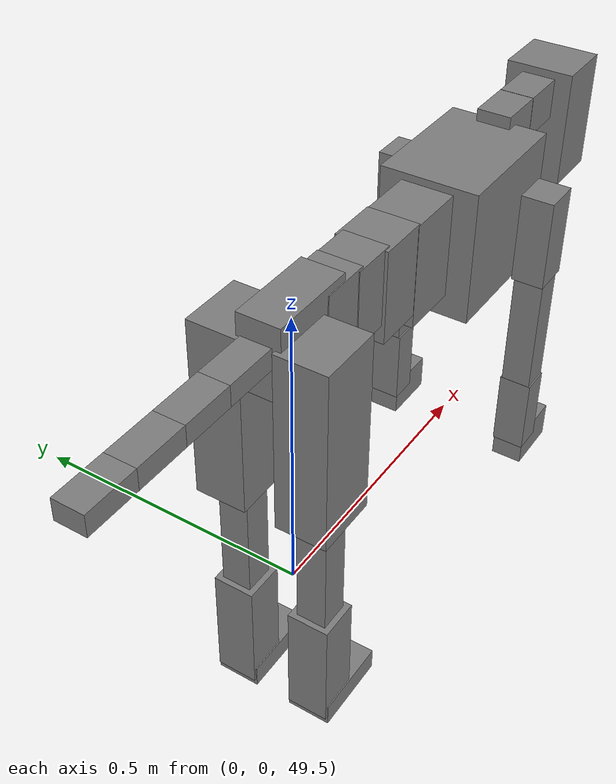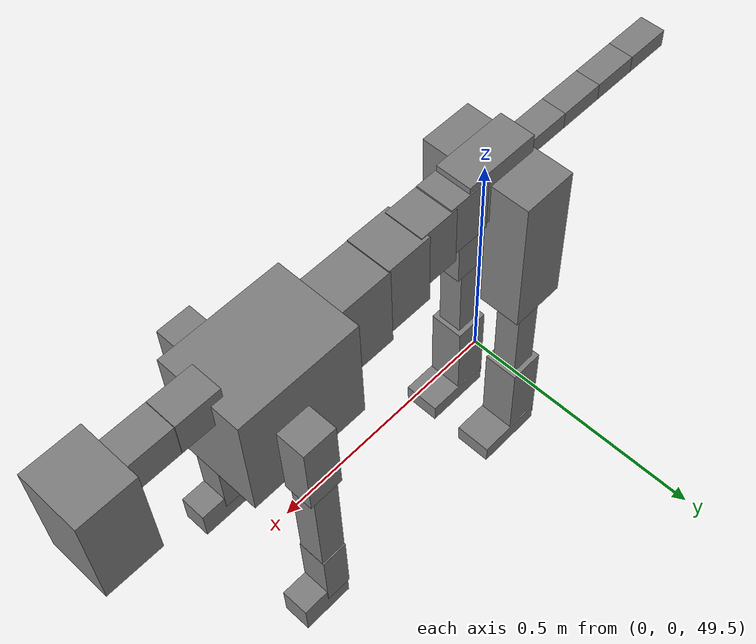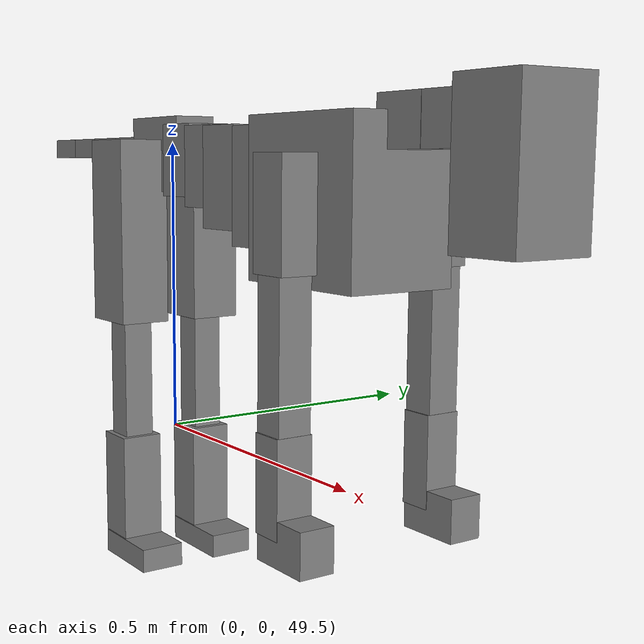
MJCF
<mujoco model="dog">

    <default>
        <joint armature="0.02" stiffness="1" damping="0.2" limited="true"/>
        <geom condim="3" friction="1 0.05 0.05" margin="0.01"/>
        <motor ctrllimited="true" ctrlrange="-1.0 1.0" forcelimited="true" gear="50"/>
    </default>

    <compiler inertiafromgeom="true" angle="radian"/>

    <option timestep="0.016" iterations="50" tolerance="1e-10" solver="Newton" jacobian="dense" cone="pyramidal"/>

    <size nconmax="20000" njmax="60000" nstack="5000000"/>
    <visual>
        <map force="0.1" zfar="30"/>
        <rgba haze="0.15 0.25 0.35 1"/>
        <quality shadowsize="2048"/>
        <global offwidth="800" offheight="800"/>
    </visual>

    <asset>
        <texture type="skybox" builtin="gradient" rgb1="0.3 0.5 0.7" rgb2="0 0 0" width="512" height="512"/>
        <texture name="texplane" type="2d" builtin="checker" rgb1=".2 .3 .4" rgb2=".1 0.15 0.2" width="512" height="512"
                 mark="cross" markrgb=".8 .8 .8"/>
        <texture name="texgeom" type="cube" builtin="flat" mark="cross" width="127" height="1278" rgb1="0.8 0.6 0.4"
                 rgb2="0.8 0.6 0.4" markrgb="1 1 1" random="0.01"/>

        <material name="matplane" reflectance="0.3" texture="texplane" texrepeat="1 1" texuniform="true"/>
        <material name="matgeom" texture="texgeom" texuniform="true" rgba="0.8 0.6 .4 1"/>
    </asset>

    <worldbody>
        <geom name="floor" pos="0 0 0" size="0 0 .25" type="plane" material="matplane" condim="3"/>

        <light directional="false" diffuse=".2 .2 .2" specular="0 0 0" pos="0 0 5" dir="0 0 -1" castshadow="false"/>
        <light mode="targetbodycom" target="torso" directional="false" diffuse=".8 .8 .8" specular="0.3 0.3 0.3"
               pos="0 0 4.0" dir="0 0 -1"/>

        <body name="root" pos="0 0 50">
            <freejoint name="root_1"/>
            <geom type="box" pos="0 0 -0.02" size="0.0774  0.0358  0.063" density="2030"/>

            <body name="spine1" pos="0.054 0 0">
                <joint name="spine1_y" axis="0 1 0" range="0 0.7" limited="true"/>
                <geom type="box" pos="0.02375 0 -0.03" size="0.04375  0.0375  0.05985" density="2030"/>

                <body name="spine2" pos="0.0612 0 0">
                    <joint name="spine2_y" axis="0 1 0" range="-0.15 0.15" limited="true"/>
                    <geom type="box" pos="0.03555  0  -0.04" size="0.04055  0.039  0.06615" density="2030"/>

                    <body name="spine3" pos="0.0730 0 0">
                        <joint name="spine3_y" axis="0 1 0" range="-0.15 0.15" limited="true"/>
                        <geom type="box" pos="0.03555  0  -0.057" size="0.04555  0.0445  0.081" density="2030"/>

                        <body name="spine4" pos="0.0780 0 0">
                            <joint name="spine4_y" axis="0 1 0" range="-0.15 0.15" limited="true"/>
                            <geom type="box" pos="0.05265  0  -0.07" size="0.05265  0.045  0.09135" density="2030"/>

                            <body name="torso" pos="0.1082 0 0">
                                <joint name="torso_y" axis="0 1 0" range="-0.15 0.15" limited="true"/>
                                <geom type="box" pos="0.11925  0  -0.085" size="0.11925  0.085  0.11745"
                                      density="2030"/>

                                <body name="neck1" pos="0.2160  0   0.0180">
                                    <joint name="neck1_y" axis="0 1 0" range="-1.2  -1" limited="true"/>
                                    <geom type="box" pos="0.0423  0  0" size="0.0423  0.03  0.036" density="2325"/>

                                    <body name="neck2" pos="0.0853  0  0">
                                        <joint name="neck2_y" axis="0 1 0" range="0.1  0" limited="true"/>
                                        <geom type="box" pos="0.0423  0  0" size="0.0423  0.03  0.036" density="2325"/>

                                        <body name="head" pos="0.0853  0  0">
                                            <joint name="head_y" axis="0 1 0" range="-0.3  -0.2" limited="true"/>
                                            <geom type="box" pos="0.0531  0  -0.055" size="0.0531  0.06  0.1044"
                                                  density="4030"/>

                                        </body>
                                    </body>
                                </body>

                                <body name="front_shoulder" pos="0.156  0   -0.0480">
                                    <joint name="front_shoulder_y" axis="0 1 0" range="-1 1.5" limited="true"/>
                                    <geom type="box" pos="0 0.13 -0.0521" size="0.0327  0.0279  0.0788" density="1158"/>
                                    <geom type="box" pos="0 -0.13 -0.0521" size="0.0327  0.0279  0.0788"
                                          density="1158"/>

                                    <body name="front_elbow" pos="0  0  -0.1042">
                                        <joint name="front_elbow_y" axis="0 1 0" range="-2 0" limited="true"/>
                                        <geom type="box" pos="0 0.13 -0.1258" size="0.0250  0.0255  0.1258"
                                              density="1081"/>
                                        <geom type="box" pos="0 -0.13 -0.1258" size="0.0250  0.0255  0.1258"
                                              density="1081"/>

                                        <body name="front_wrist" pos="0  0  -0.2516">
                                            <joint name="front_wrist_y" axis="0 1 0" range="-0.2 0" limited="true"/>
                                            <geom type="box" pos="0 0.13 -0.0563" size="0.0252  0.0280  0.0695"
                                                  density="1664"/>
                                            <geom type="box" pos="0 -0.13 -0.0563" size="0.0252  0.0280  0.0695"
                                                  density="1664"/>

                                            <body name="front_finger_end" pos="0  0  -0.1127">
                                                <joint name="front_finger_y" axis="0 1 0" range="-0.4 1"
                                                       limited="true"/>
                                                <geom type="box" pos="0.0271  0.13  -0.0175"
                                                      size="0.0496  0.0271  0.0325" density="1515"/>
                                                <geom type="box" pos="0.0271  -0.13  -0.0175"
                                                      size="0.0496  0.0271  0.0325" density="1515"/>

                                            </body>

                                        </body>
                                    </body>
                                </body>

                            </body>
                        </body>
                    </body>
                </body>
            </body>

            <body name="back_hip" pos="-0.03 0 -0.018">
                <joint name="back_hip_y" axis="0 1 0" range="-1.5 0.3" limited="true"/>
                <geom type="box" pos="0 0.07 -0.1333" size="0.0553  0.0434  0.1561" density="1154"/>
                <geom type="box" pos="0 -0.07 -0.1333" size="0.0553  0.0434  0.1561" density="1154"/>

                <body name="back_knee" pos="0  0  -0.2666">
                    <joint name="back_knee_y" axis="0 1 0" range="0 2.8" limited="true"/>
                    <geom type="box" pos="0 0.07 -0.1191" size="0.0261  0.0257  0.1346" density="1227"/>
                    <geom type="box" pos="0 -0.07 -0.1191" size="0.0261  0.0257  0.1346" density="1227"/>

                    <body name="back_ankle" pos="0  0  -0.2381">
                        <joint name="back_ankle_y" axis="0 1 0" range="-2.2 0" limited="true"/>
                        <geom type="box" pos="0 0.07 -0.0925" size="0.0358  0.0358  0.1038" density="1284"/>
                        <geom type="box" pos="0 -0.07 -0.0925" size="0.0358  0.0358  0.1038" density="1284"/>

                        <body name="back_toe_end" pos="0  0  -0.1850">
                            <joint name="back_toe_y" axis="0 1 0" range="-0.4 1" limited="true"/>
                            <geom type="box" pos="0.0378  0.07  -0.0049" size="0.0693  0.0378  0.0199" density="1515"/>
                            <geom type="box" pos="0.0378  -0.07  -0.0049" size="0.0693  0.0378  0.0199" density="1515"/>

                        </body>
                    </body>
                </body>
            </body>

            <body name="tail1" pos="-0.074 0 -0.006">
                <joint name="tail1_y" axis="0 1 0" range="-0.2 0.2" limited="true"/>
                <geom type="box" pos="-0.0536  0  0" size="0.045  0.025  0.0175" density="1587"/>

                <body name="tail2" pos="-0.09 0 0">
                    <joint name="tail2_y" axis="0 1 0" range="-0.2 0.2" limited="true"/>
                    <geom type="box" pos="-0.0536  0  0" size="0.045  0.025  0.0175" density="1587"/>

                    <body name="tail3" pos="-0.09 0 0">
                        <joint name="tail3_y" axis="0 1 0" range="-0.2 0.2" limited="true"/>
                        <geom type="box" pos="-0.0536  0  0" size="0.045  0.025  0.0175" density="1587"/>

                        <body name="tail4" pos="-0.09 0 0">
                            <joint name="tail4_y" axis="0 1 0" range="-0.2 0.2" limited="true"/>
                            <geom type="box" pos="-0.0536  0  0" size="0.045  0.025  0.0175" density="1587"/>

                        </body>
                    </body>
                </body>
            </body>
        </body>
    </worldbody>

    <actuator>
        <motor joint="spine1_y" forcerange="-150 150     "/>
        <motor joint="spine2_y" forcerange="-150 150     "/>
        <motor joint="spine3_y" forcerange="-150 150     "/>
        <motor joint="spine4_y" forcerange="-150 150     "/>
        <motor joint="torso_y" forcerange="-150 150     "/>
        <motor joint="neck1_y" forcerange="-100 100       "/>
        <motor joint="neck2_y" forcerange="-100 100       "/>
        <motor joint="head_y" forcerange="-150 150       "/>
        <motor joint="front_shoulder_y" forcerange="-166.88 119.31"/>
        <motor joint="front_elbow_y" forcerange="-152.64 132.92"/>
        <motor joint="front_wrist_y" forcerange="-149.66 74.33"/>
        <motor joint="front_finger_y" forcerange="-20.42 83.99"/>
        <motor joint="back_hip_y" forcerange="-392.62 385.91"/>
        <motor joint="back_knee_y" forcerange="-213.30 360.47"/>
        <motor joint="back_angle_y" forcerange="-249.12 223.12"/>
        <motor joint="back_toe_y" forcerange="-84.77 137.85"/>
        <motor joint="tail1_y" forcerange="-50 50     "/>
        <motor joint="tail2_y" forcerange="-50 50     "/>
        <motor joint="tail3_y" forcerange="-50 50     "/>
        <motor joint="tail4_y" forcerange="-50 50     "/>
    </actuator>
</mujoco>
